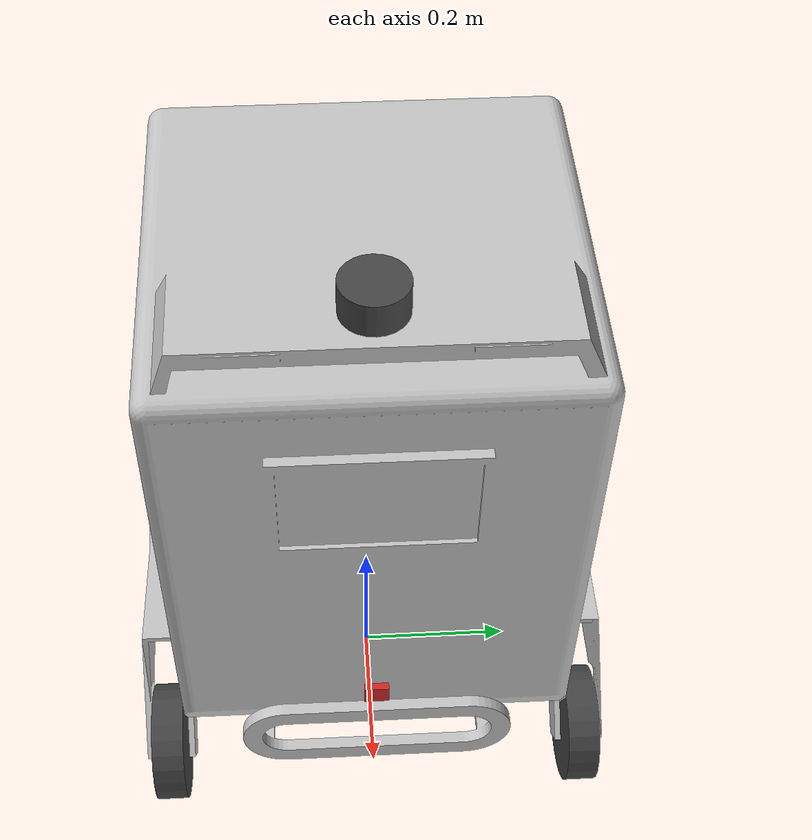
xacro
<?xml version="1.0" ?>
        <robot name="potrol"  xmlns:xacro="http://www.ros.org/wiki/xacro">

    <xacro:include filename="base2.xacro"/>
    <xacro:include filename="camera.xacro"/>
    <xacro:include filename="lidar_gazebo.xacro"/>
    <xacro:include filename="ros2_control_diff_drive.xacro"/>

</robot>

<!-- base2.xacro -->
<robot name="potrol"  xmlns:xacro="http://www.ros.org/wiki/xacro">

    <material name="Blue">
        <color rgba="0.03 0.01 0.97 1"/>
    </material>
    <material name="Yellow">
        <color rgba="0.82 0.8 0.08 1"/>
    </material>
    <material name="Black">
        <color rgba="0.27 0.27 0.27 1"/>
    </material>
    <material name="gray2">
        <color rgba="0.76 0.76 0.76 1"/>
    </material>
    <material name="gray">
        <color rgba="0.76 0.76 0.76 1"/>
    </material>

    <link name="base_footprint">
    </link>
    <!-- BASE LINK -->

    <link name="base_link">
        <inertial>
            <origin xyz="0.0 0.0 0.58" rpy="0.0 0.0 1.57"/>
            <mass value="10.0"/>
            <inertia  ixx="0.544083333333" ixy="0" ixz="0" iyy="0.544083333333" iyz="0" izz="0.384" />
        </inertial>
        <visual>
            <origin rpy="0 0 1.57" xyz="0 0 0"/>
            <geometry>
                <mesh filename="package://potrol_description_cmake/meshes/robo_frame.stl" scale="0.75 0.75 0.75"/>
            </geometry>
            <material name="gray"/>

        </visual>
        <collision>
            <origin rpy="0 0 1.57" xyz="0 0 0"/>
            <geometry>

                <mesh filename="package://potrol_description_cmake/meshes/robo_frame.stl" scale="0.75 0.75 0.75"/>

            </geometry>

        </collision>
    </link>

    <joint name="base_joint" type="fixed">
        <origin xyz="0.0 0.0 0.03" rpy="0.0 0.0 0"/>
        <parent link="base_footprint" />
        <child link="base_link" />
        <axis xyz="0.0 0.0 0"/>
    </joint>
    <!-- BASE LINK END -->

    <!-- CAMERA -->

    <joint name="camera_joint" type="fixed">
        <parent link="base_link"/>
        <child link="camera_link"/>
        <origin xyz="0.249564 -0.0 0.227776" rpy="0 0 0"/>
    </joint>

    <!-- CAMERA END -->

    <!-- LiDAR -->
    <joint name="laser_joint" type="fixed">
        <parent link="base_link"/>
        <child link="laser_frame"/>
        <origin xyz="0.156491 0.0 0.813175" rpy="0 0 0"/>
    </joint>

    <link name="laser_frame">
        <visual>
            <geometry>
                <cylinder radius="0.0375" length="0.04"/>
            </geometry>
            <material name="Black"/>
        </visual>
        <collision>
            <geometry>
                <cylinder radius="0.0375" length="0.03"/>
            </geometry>
        </collision>
        <inertial>
            <origin xyz="0.0 0.0 0.0" rpy="0.0 0.0 0.0"/>
            <mass value="0.1"/>
            <inertia  ixx="1.01633333333" ixy="0" ixz="0" iyy="1.01633333333" iyz="0" izz="0.682666666667" />
        </inertial>
    </link>
    <!-- LiDAR END -->

    <!-- WHEEL -->

    <xacro:macro name="big_wheel" params="name x y z p">
        <link name="wheel_${name}_link">
           <inertial>
                <origin xyz="0.0 0.0 0.0" rpy="0.0 0.0 0.0"/>
                <mass value="4.1"/>
                <inertia  ixx="0.00631229166667" ixy="0" ixz="0" iyy="0.00631229166667" iyz="0" izz="0.01153125" />
           </inertial>
            <visual>
                <geometry>
                    <cylinder radius="0.075" length="0.04"/>
                </geometry>
                <material name="Black"/>

            </visual>

            <collision>
                <geometry>
                    <cylinder radius="0.075" length="0.038"/>
                </geometry>
            </collision>
        </link>

        <gazebo reference="wheel_${name}_link">
          <material>Gazebo/Gray</material>
          <mu1>1000000000000.0</mu1>
          <mu2>1000000000000.0</mu2>
        </gazebo>

        <joint name="wheel_${name}_joint" type="continuous">
            <origin rpy="-1.57 ${p} 0" xyz="${x} ${y} ${z}"/>
            <parent  link="base_footprint" />
            <child link="wheel_${name}_link"/>
            <axis xyz="0.0 0.0 1.0"/>
        </joint>

    </xacro:macro>

    <xacro:big_wheel name="forward_left"  x="0.21375" y="0.26775" z="0.1" p="0" />
    <xacro:big_wheel name="forward_right"  x="0.21375" y="-0.26775" z="0.1" p="0" />
    <xacro:big_wheel name="back_right"  x="-0.21375" y="-0.26775" z="0.1" p="0" />
    <xacro:big_wheel name="back_left"  x="-0.21375" y="0.26775" z="0.1" p="0" />

</robot>

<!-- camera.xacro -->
<robot name="potrol"  xmlns:xacro="http://www.ros.org/wiki/xacro">

    <link name="camera_link">
        <visual>
            <geometry>
                <box size="0.010 0.03 0.03"/>
            </geometry>
            <material name="red"/>
        </visual>
    </link>

    <joint name="camera_optical_joint" type="fixed">
        <parent link="camera_link"/>
        <child link="camera_link_optical"/>
        <origin xyz="0 0 0" rpy="${-pi/2} 0 ${-pi/2}"/>
    </joint>

    <link name="camera_link_optical"></link>

    <gazebo reference="camera_link">
        <material>Gazebo/Red</material>

        <sensor name="camera" type="depth">
            <pose> 0 0 0 0 0 0 </pose>
            <visualize>true</visualize>
            <update_rate>10</update_rate>
            <camera>
                <horizontal_fov>1.089</horizontal_fov>
                <image>
                    <format>B8G8R8</format>
                    <width>640</width>
                    <height>480</height>
                </image>
                <clip>
                    <near>0.05</near>
                    <far>8.0</far>
                </clip>
            </camera>
            <plugin name="camera_controller" filename="libgazebo_ros_camera.so">
                <frame_name>camera_link_optical</frame_name>
                <min_depth>0.1</min_depth>
                <max_depth>100.0</max_depth>
            </plugin>
        </sensor>
    </gazebo>

    <!-- camera -->

  <!-- Camera -->

</robot>
